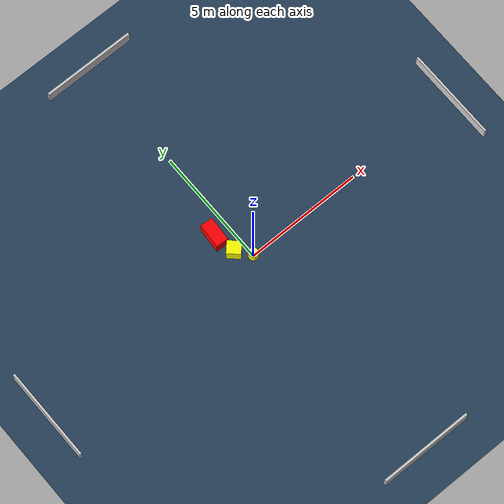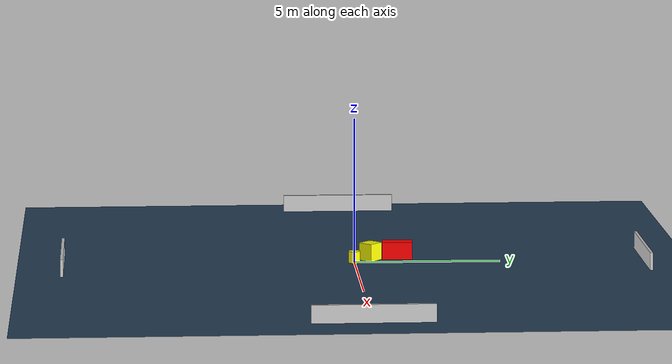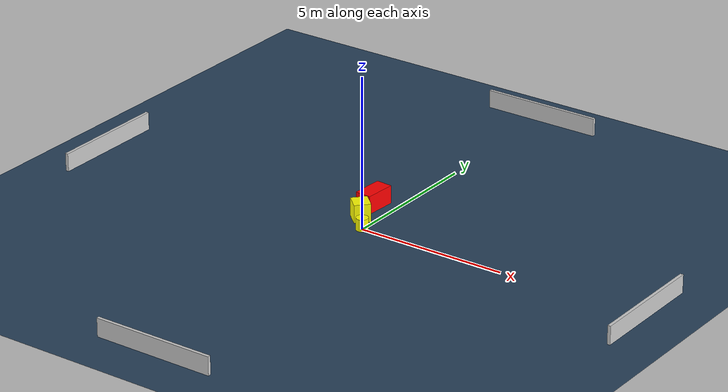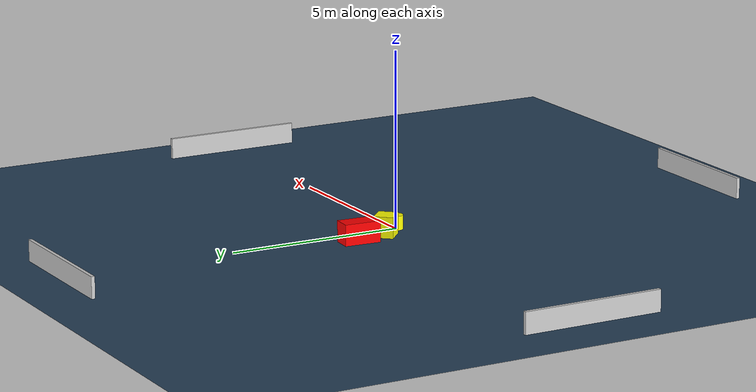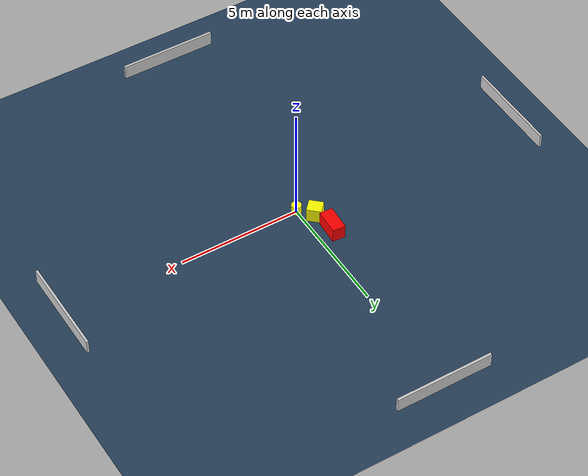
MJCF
<?xml version="1.0" ?>
<mujoco model="generated_environment">
  <option timestep="0.01" integrator="RK4" cone="elliptic"/>
  <default>
    <geom density="1"/>
  </default>
  <asset>
    <texture builtin="gradient" height="3072" name="skybox" rgb1="0.3 0.5 0.7" rgb2="0 0 0" type="skybox" width="512"/>
    <texture builtin="checker" height="300" name="groundplane" rgb1="0.2 0.3 0.4" rgb2="0.1 0.2 0.3" type="2d" width="300"/>
    <material name="groundplane" reflectance="0.2" texrepeat="5 5" texture="groundplane"/>
  </asset>
  <worldbody>
    <light dir="0 0 -1" directional="true" pos="0 0 1.5"/>
    <geom condim="3" friction="0.5 0.005 0.001" material="groundplane" name="floor" pos="0 0 0" size="0 0 0.05" type="plane"/>
    <body name="walls">
      <geom name="wall_1" condim="4" pos="-10.0 0.0 0.3" rgba="0.800000011920929 0.800000011920929 0.800000011920929 1.0" size="0.05 2.0 0.3" type="box"/>
      <geom name="wall_2" condim="4" pos="10.0 0.0 0.3" rgba="0.800000011920929 0.800000011920929 0.800000011920929 1.0" size="0.05 2.0 0.3" type="box"/>
      <geom name="wall_3" condim="4" pos="0.0 -10.0 0.3" rgba="0.800000011920929 0.800000011920929 0.800000011920929 1.0" size="2.0 0.05 0.3" type="box"/>
      <geom name="wall_4" condim="4" pos="0.0 10.0 0.3" rgba="0.800000011920929 0.800000011920929 0.800000011920929 1.0" size="2.0 0.05 0.3" type="box"/>
    </body>
    <body name="robot">
      <joint name="joint_x" type="slide" pos="0 0 0" axis="1 0 0"/>
      <joint name="joint_y" type="slide" pos="0 0 0" axis="0 1 0"/>
      <geom name="robot" type="cylinder" pos="0.0 0.0 0.2" size="0.2 0.2 0.0" mass="5.0" friction="1.0 0.005 0.0001" condim="4" rgba="1.0 1.0 0.0 1.0"/>
    </body>
    <body name="obstacle_1_movable">
      <geom name="obstacle_1_movable" condim="4" pos="-0.47590610862537225 0.5852544407760175 0.3" euler="0 0 227.08830595704762" friction="0.0 0.005 0.001" rgba="1.0 1.0 0.0 1.0" size="0.2683764419867302 0.29155750409164116 0.3" type="box" mass="0.1"/>
      <joint type="free"/>
    </body>
    <body name="obstacle_2_static">
      <geom name="obstacle_2_static" condim="4" pos="-0.6630994885310602 1.5238291566938347 0.3" euler="0 0 176.316603676895" friction="0.0 0.005 0.001" rgba="1.0 0.0 0.0 1.0" size="0.26782256318610453 0.5201081733336844 0.3" type="box"/>
    </body>
  </worldbody>
  <actuator>
    <motor name="actuator_x" joint="joint_x" gear="1" ctrlrange="-1 1"/>
    <motor name="actuator_y" joint="joint_y" gear="1" ctrlrange="-1 1"/>
  </actuator>
</mujoco>
